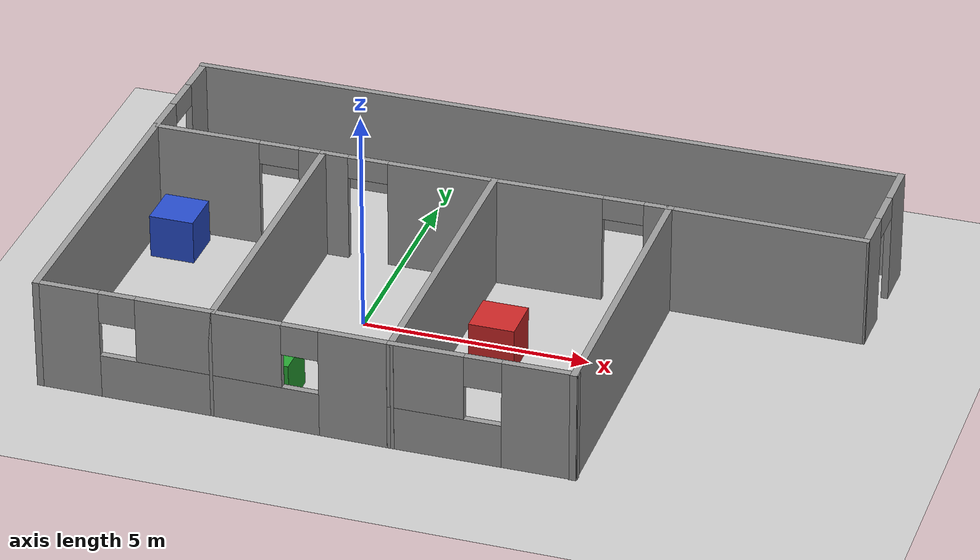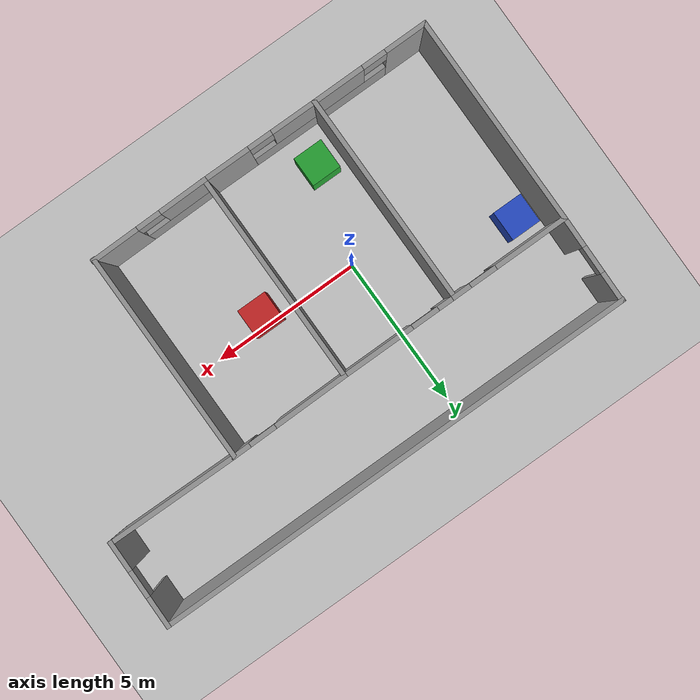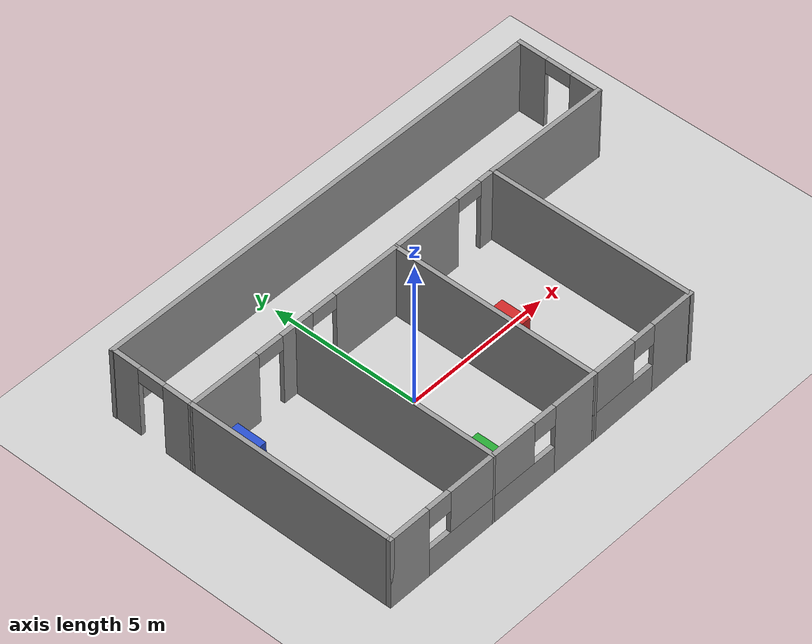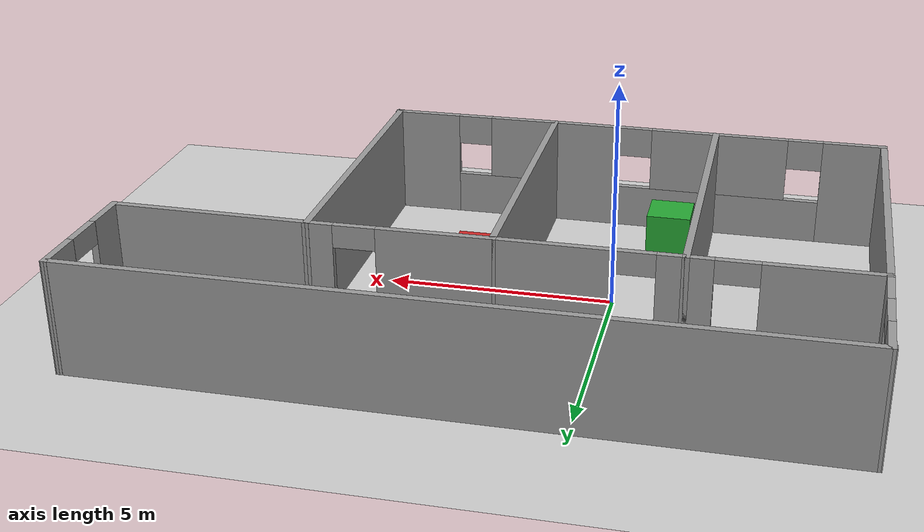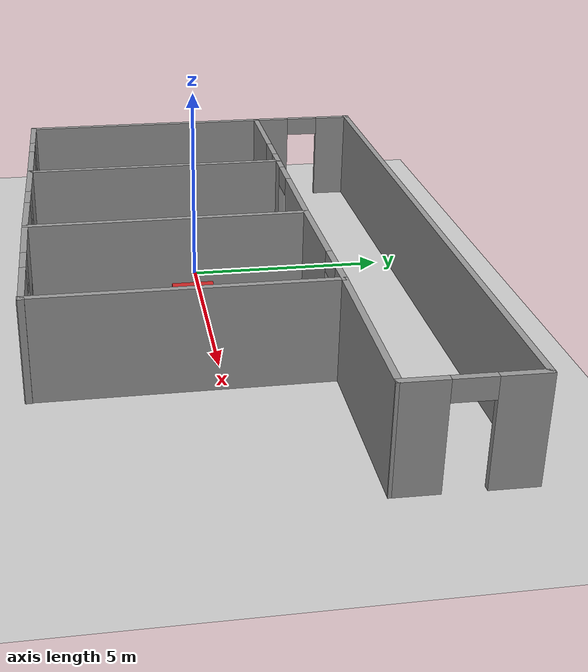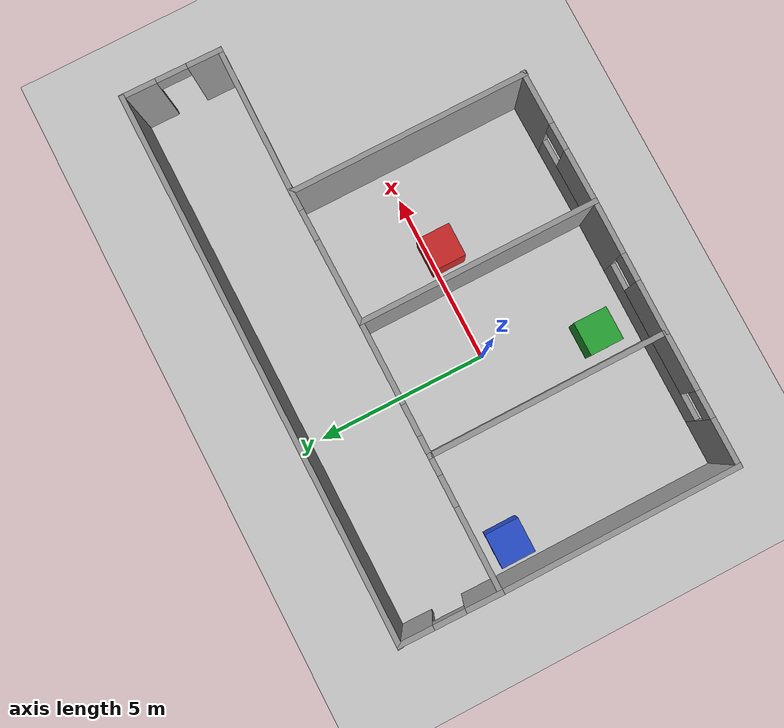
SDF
<sdf version="1.6">
 <world name="default">
  <light name="sun" type="directional">
   <pose>0 0 10 0 -0 0</pose>
   <diffuse>0.8 0.8 0.8 1</diffuse>
   <specular>0.1 0.1 0.1 1</specular>
   <attenuation>
    <range>1000</range>
    <constant>0.9</constant>
    <linear>0.01</linear>
    <quadratic>0.001</quadratic>
   </attenuation>
   <direction>-0.5 0.5 -1</direction>
  </light>
  <model name="ground_plane">
   <static>1</static>
   <link name="link">
    <collision name="collision">
     <geometry><plane><normal>0 0 1</normal><size>100 100</size></plane></geometry>
     <surface><friction><ode><mu>100</mu><mu2>50</mu2></ode></friction></surface>
    </collision>
    <visual name="visual">
     <cast_shadows>0</cast_shadows>
     <geometry><plane><normal>0 0 1</normal><size>100 100</size></plane></geometry>
     <material>
      <script><uri>file://media/materials/scripts/gazebo.material</uri><name>Gazebo/Grey</name></script>
     </material>
    </visual>
   </link>
  </model>
  <gravity>0 0 -9.8</gravity>
  <magnetic_field>6e-06 2.3e-05 -4.2e-05</magnetic_field>
  <atmosphere type="adiabatic"/>
  <physics name="default_physics" default="0" type="ode">
   <max_step_size>0.001</max_step_size>
   <real_time_factor>1</real_time_factor>
   <real_time_update_rate>1000</real_time_update_rate>
  </physics>
  <scene><ambient>0.4 0.4 0.4 1</ambient><background>0.7 0.7 0.7 1</background><shadows>1</shadows></scene>
  <spherical_coordinates>
   <surface_model>EARTH_WGS84</surface_model>
   <latitude_deg>0</latitude_deg>
   <longitude_deg>0</longitude_deg>
   <elevation>0</elevation>
   <heading_deg>0</heading_deg>
  </spherical_coordinates>
  <model name="hallway2">
   <pose>2.33665 0.556149 0 0 -0 0</pose>
   <link name="Wall_0">
    <collision name="Wall_0_Collision">
     <geometry><box><size>6.98 0.15 2.5</size></box></geometry>
     <pose>0 0 1.25 0 -0 0</pose>
    </collision>
    <visual name="Wall_0_Visual">
     <pose>0 0 1.25 0 -0 0</pose>
     <geometry><box><size>6.98 0.15 2.5</size></box></geometry>
     <material>
      <script><uri>file://media/materials/scripts/gazebo.material</uri><name>Gazebo/Grey</name></script>
      <ambient>1 1 1 1</ambient>
     </material>
    </visual>
    <pose>-7.94511 -1.41507 0 0 -0 1.5708</pose>
   </link>
   <link name="Wall_1">
    <pose>-6.02011 1.99993 0 0 -0 0</pose>
    <visual name="Wall_1_Visual_0">
     <pose>-0.763451 0 1.25 0 -0 0</pose>
     <geometry><box><size>2.4731 0.15 2.5</size></box></geometry>
     <material>
      <script><uri>file://media/materials/scripts/gazebo.material</uri><name>Gazebo/Grey</name></script>
      <ambient>1 1 1 1</ambient>
     </material>
    </visual>
    <collision name="Wall_1_Collision_0">
     <geometry><box><size>2.4731 0.15 2.5</size></box></geometry>
     <pose>-0.763451 0 1.25 0 -0 0</pose>
    </collision>
    <visual name="Wall_1_Visual_1">
     <pose>1.68655 0 1.25 0 -0 0</pose>
     <geometry><box><size>0.626901 0.15 2.5</size></box></geometry>
     <material>
      <script><uri>file://media/materials/scripts/gazebo.material</uri><name>Gazebo/Grey</name></script>
      <ambient>1 1 1 1</ambient>
     </material>
    </visual>
    <collision name="Wall_1_Collision_1">
     <geometry><box><size>0.626901 0.15 2.5</size></box></geometry>
     <pose>1.68655 0 1.25 0 -0 0</pose>
    </collision>
    <visual name="Wall_1_Visual_2">
     <pose>0.923099 0 2.25 0 -0 0</pose>
     <geometry><box><size>0.9 0.15 0.5</size></box></geometry>
     <material>
      <script><uri>file://media/materials/scripts/gazebo.material</uri><name>Gazebo/Grey</name></script>
      <ambient>1 1 1 1</ambient>
     </material>
    </visual>
    <collision name="Wall_1_Collision_2">
     <geometry><box><size>0.9 0.15 0.5</size></box></geometry>
     <pose>0.923099 0 2.25 0 -0 0</pose>
    </collision>
   </link>
   <link name="Wall_10">
    <pose>1.7 2.02004 0 0 -0 0.01034</pose>
    <visual name="Wall_10_Visual_0">
     <pose>-0.771894 0 1.25 0 -0 0</pose>
     <geometry><box><size>2.49665 0.15 2.5</size></box></geometry>
     <material>
      <script><uri>file://media/materials/scripts/gazebo.material</uri><name>Gazebo/Grey</name></script>
      <ambient>1 1 1 1</ambient>
     </material>
    </visual>
    <collision name="Wall_10_Collision_0">
     <geometry><box><size>2.49665 0.15 2.5</size></box></geometry>
     <pose>-0.771894 0 1.25 0 -0 0</pose>
    </collision>
    <visual name="Wall_10_Visual_1">
     <pose>1.69832 0 1.25 0 -0 0</pose>
     <geometry><box><size>0.643788 0.15 2.5</size></box></geometry>
     <material>
      <script><uri>file://media/materials/scripts/gazebo.material</uri><name>Gazebo/Grey</name></script>
      <ambient>1 1 1 1</ambient>
     </material>
    </visual>
    <collision name="Wall_10_Collision_1">
     <geometry><box><size>0.643788 0.15 2.5</size></box></geometry>
     <pose>1.69832 0 1.25 0 -0 0</pose>
    </collision>
    <visual name="Wall_10_Visual_2">
     <pose>0.92643 0 2.25 0 -0 0</pose>
     <geometry><box><size>0.9 0.15 0.5</size></box></geometry>
     <material>
      <script><uri>file://media/materials/scripts/gazebo.material</uri><name>Gazebo/Grey</name></script>
      <ambient>1 1 1 1</ambient>
     </material>
    </visual>
    <collision name="Wall_10_Collision_2">
     <geometry><box><size>0.9 0.15 0.5</size></box></geometry>
     <pose>0.92643 0 2.25 0 -0 0</pose>
    </collision>
   </link>
   <link name="Wall_11">
    <collision name="Wall_11_Collision">
     <geometry><box><size>7 0.15 2.5</size></box></geometry>
     <pose>0 0 1.25 0 -0 0</pose>
    </collision>
    <visual name="Wall_11_Visual">
     <pose>0 0 1.25 0 -0 0</pose>
     <geometry><box><size>7 0.15 2.5</size></box></geometry>
     <material>
      <script><uri>file://media/materials/scripts/gazebo.material</uri><name>Gazebo/Grey</name></script>
      <ambient>1 1 1 1</ambient>
     </material>
    </visual>
    <pose>3.625 -1.40495 0 0 0 -1.5708</pose>
   </link>
   <link name="Wall_12">
    <pose>1.7 -4.82995 0 0 0 -3.13125</pose>
    <visual name="Wall_12_Visual_0">
     <pose>-1.21753 0 1.25 0 -0 0</pose>
     <geometry><box><size>1.60538 0.15 2.5</size></box></geometry>
     <material>
      <script><uri>file://media/materials/scripts/gazebo.material</uri><name>Gazebo/Grey</name></script>
      <ambient>1 1 1 1</ambient>
     </material>
    </visual>
    <collision name="Wall_12_Collision_0">
     <geometry><box><size>1.60538 0.15 2.5</size></box></geometry>
     <pose>-1.21753 0 1.25 0 -0 0</pose>
    </collision>
    <visual name="Wall_12_Visual_1">
     <pose>0.802692 0 0.5 0 -0 0</pose>
     <geometry><box><size>2.43505 0.15 1</size></box></geometry>
     <material>
      <script><uri>file://media/materials/scripts/gazebo.material</uri><name>Gazebo/Grey</name></script>
      <ambient>1 1 1 1</ambient>
     </material>
    </visual>
    <collision name="Wall_12_Collision_1">
     <geometry><box><size>2.43505 0.15 1</size></box></geometry>
     <pose>0.802692 0 0.5 0 -0 0</pose>
    </collision>
    <visual name="Wall_12_Visual_2">
     <pose>1.20269 0 1.75 0 -0 0</pose>
     <geometry><box><size>1.63505 0.15 1.5</size></box></geometry>
     <material>
      <script><uri>file://media/materials/scripts/gazebo.material</uri><name>Gazebo/Grey</name></script>
      <ambient>1 1 1 1</ambient>
     </material>
    </visual>
    <collision name="Wall_12_Collision_2">
     <geometry><box><size>1.63505 0.15 1.5</size></box></geometry>
     <pose>1.20269 0 1.75 0 -0 0</pose>
    </collision>
    <visual name="Wall_12_Visual_3">
     <pose>-0.014834 0 2.15 0 -0 0</pose>
     <geometry><box><size>0.8 0.15 0.7</size></box></geometry>
     <material>
      <script><uri>file://media/materials/scripts/gazebo.material</uri><name>Gazebo/Grey</name></script>
      <ambient>1 1 1 1</ambient>
     </material>
    </visual>
    <collision name="Wall_12_Collision_3">
     <geometry><box><size>0.8 0.15 0.7</size></box></geometry>
     <pose>-0.014834 0 2.15 0 -0 0</pose>
    </collision>
   </link>
   <link name="Wall_14">
    <pose>-7.925 3.42493 0 0 -0 1.55668</pose>
    <visual name="Wall_14_Visual_0">
     <pose>-0.969711 0 1.25 0 -0 0</pose>
     <geometry><box><size>1.06058 0.15 2.5</size></box></geometry>
     <material>
      <script><uri>file://media/materials/scripts/gazebo.material</uri><name>Gazebo/Grey</name></script>
      <ambient>1 1 1 1</ambient>
     </material>
    </visual>
    <collision name="Wall_14_Collision_0">
     <geometry><box><size>1.06058 0.15 2.5</size></box></geometry>
     <pose>-0.969711 0 1.25 0 -0 0</pose>
    </collision>
    <visual name="Wall_14_Visual_1">
     <pose>0.980289 0 1.25 0 -0 0</pose>
     <geometry><box><size>1.03942 0.15 2.5</size></box></geometry>
     <material>
      <script><uri>file://media/materials/scripts/gazebo.material</uri><name>Gazebo/Grey</name></script>
      <ambient>1 1 1 1</ambient>
     </material>
    </visual>
    <collision name="Wall_14_Collision_1">
     <geometry><box><size>1.03942 0.15 2.5</size></box></geometry>
     <pose>0.980289 0 1.25 0 -0 0</pose>
    </collision>
    <visual name="Wall_14_Visual_2">
     <pose>0.010579 0 2.25 0 -0 0</pose>
     <geometry><box><size>0.9 0.15 0.5</size></box></geometry>
     <material>
      <script><uri>file://media/materials/scripts/gazebo.material</uri><name>Gazebo/Grey</name></script>
      <ambient>1 1 1 1</ambient>
     </material>
    </visual>
    <collision name="Wall_14_Collision_2">
     <geometry><box><size>0.9 0.15 0.5</size></box></geometry>
     <pose>0.010579 0 2.25 0 -0 0</pose>
    </collision>
   </link>
   <link name="Wall_15">
    <collision name="Wall_15_Collision">
     <geometry><box><size>16 0.15 2.5</size></box></geometry>
     <pose>0 0 1.25 0 -0 0</pose>
    </collision>
    <visual name="Wall_15_Visual">
     <pose>0 0 1.25 0 -0 0</pose>
     <geometry><box><size>16 0.15 2.5</size></box></geometry>
     <material>
      <script><uri>file://media/materials/scripts/gazebo.material</uri><name>Gazebo/Grey</name></script>
      <ambient>1 1 1 1</ambient>
     </material>
    </visual>
    <pose>0 4.84993 0 0 -0 0</pose>
   </link>
   <link name="Wall_16">
    <pose>7.925 3.42493 0 0 0 -1.58491</pose>
    <visual name="Wall_16_Visual_0">
     <pose>-0.970232 0 1.25 0 -0 0</pose>
     <geometry><box><size>1.05954 0.15 2.5</size></box></geometry>
     <material>
      <script><uri>file://media/materials/scripts/gazebo.material</uri><name>Gazebo/Grey</name></script>
      <ambient>1 1 1 1</ambient>
     </material>
    </visual>
    <collision name="Wall_16_Collision_0">
     <geometry><box><size>1.05954 0.15 2.5</size></box></geometry>
     <pose>-0.970232 0 1.25 0 -0 0</pose>
    </collision>
    <visual name="Wall_16_Visual_1">
     <pose>0.979768 0 1.25 0 -0 0</pose>
     <geometry><box><size>1.04046 0.15 2.5</size></box></geometry>
     <material>
      <script><uri>file://media/materials/scripts/gazebo.material</uri><name>Gazebo/Grey</name></script>
      <ambient>1 1 1 1</ambient>
     </material>
    </visual>
    <collision name="Wall_16_Collision_1">
     <geometry><box><size>1.04046 0.15 2.5</size></box></geometry>
     <pose>0.979768 0 1.25 0 -0 0</pose>
    </collision>
    <visual name="Wall_16_Visual_2">
     <pose>0.009537 0 2.25 0 -0 0</pose>
     <geometry><box><size>0.9 0.15 0.5</size></box></geometry>
     <material>
      <script><uri>file://media/materials/scripts/gazebo.material</uri><name>Gazebo/Grey</name></script>
      <ambient>1 1 1 1</ambient>
     </material>
    </visual>
    <collision name="Wall_16_Collision_2">
     <geometry><box><size>0.9 0.15 0.5</size></box></geometry>
     <pose>0.009537 0 2.25 0 -0 0</pose>
    </collision>
   </link>
   <link name="Wall_17">
    <collision name="Wall_17_Collision">
     <geometry><box><size>4.40996 0.15 2.5</size></box></geometry>
     <pose>0 0 1.25 0 -0 0</pose>
    </collision>
    <visual name="Wall_17_Visual">
     <pose>0 0 1.25 0 -0 0</pose>
     <geometry><box><size>4.40996 0.15 2.5</size></box></geometry>
     <material>
      <script><uri>file://media/materials/scripts/gazebo.material</uri><name>Gazebo/Grey</name></script>
      <ambient>1 1 1 1</ambient>
     </material>
    </visual>
    <pose>5.775 2.02004 0 0 -0 3.13215</pose>
   </link>
   <link name="Wall_2">
    <collision name="Wall_2_Collision">
     <geometry><box><size>6.98 0.15 2.5</size></box></geometry>
     <pose>0 0 1.25 0 -0 0</pose>
    </collision>
    <visual name="Wall_2_Visual">
     <pose>0 0 1.25 0 -0 0</pose>
     <geometry><box><size>6.98 0.15 2.5</size></box></geometry>
     <material>
      <script><uri>file://media/materials/scripts/gazebo.material</uri><name>Gazebo/Grey</name></script>
      <ambient>1 1 1 1</ambient>
     </material>
    </visual>
    <pose>-4.09511 -1.41507 0 0 0 -1.5708</pose>
   </link>
   <link name="Wall_4">
    <pose>-6.02011 -4.83007 0 0 -0 0</pose>
    <visual name="Wall_4_Visual_0">
     <pose>-1.27636 0 1.25 0 -0 0</pose>
     <geometry><box><size>1.44728 0.15 2.5</size></box></geometry>
     <material>
      <script><uri>file://media/materials/scripts/gazebo.material</uri><name>Gazebo/Grey</name></script>
      <ambient>1 1 1 1</ambient>
     </material>
    </visual>
    <collision name="Wall_4_Collision_0">
     <geometry><box><size>1.44728 0.15 2.5</size></box></geometry>
     <pose>-1.27636 0 1.25 0 -0 0</pose>
    </collision>
    <visual name="Wall_4_Visual_1">
     <pose>0.723642 0 0.5 0 -0 0</pose>
     <geometry><box><size>2.55272 0.15 1</size></box></geometry>
     <material>
      <script><uri>file://media/materials/scripts/gazebo.material</uri><name>Gazebo/Grey</name></script>
      <ambient>1 1 1 1</ambient>
     </material>
    </visual>
    <collision name="Wall_4_Collision_1">
     <geometry><box><size>2.55272 0.15 1</size></box></geometry>
     <pose>0.723642 0 0.5 0 -0 0</pose>
    </collision>
    <visual name="Wall_4_Visual_2">
     <pose>1.12364 0 1.75 0 -0 0</pose>
     <geometry><box><size>1.75272 0.15 1.5</size></box></geometry>
     <material>
      <script><uri>file://media/materials/scripts/gazebo.material</uri><name>Gazebo/Grey</name></script>
      <ambient>1 1 1 1</ambient>
     </material>
    </visual>
    <collision name="Wall_4_Collision_2">
     <geometry><box><size>1.75272 0.15 1.5</size></box></geometry>
     <pose>1.12364 0 1.75 0 -0 0</pose>
    </collision>
    <visual name="Wall_4_Visual_3">
     <pose>-0.152716 0 2.15 0 -0 0</pose>
     <geometry><box><size>0.8 0.15 0.7</size></box></geometry>
     <material>
      <script><uri>file://media/materials/scripts/gazebo.material</uri><name>Gazebo/Grey</name></script>
      <ambient>1 1 1 1</ambient>
     </material>
    </visual>
    <collision name="Wall_4_Collision_3">
     <geometry><box><size>0.8 0.15 0.7</size></box></geometry>
     <pose>-0.152716 0 2.15 0 -0 0</pose>
    </collision>
   </link>
   <link name="Wall_6">
    <pose>-2.17011 1.99993 0 0 -0 0</pose>
    <visual name="Wall_6_Visual_0">
     <pose>-1.67761 0 1.25 0 -0 0</pose>
     <geometry><box><size>0.644774 0.15 2.5</size></box></geometry>
     <material>
      <script><uri>file://media/materials/scripts/gazebo.material</uri><name>Gazebo/Grey</name></script>
      <ambient>1 1 1 1</ambient>
     </material>
    </visual>
    <collision name="Wall_6_Collision_0">
     <geometry><box><size>0.644774 0.15 2.5</size></box></geometry>
     <pose>-1.67761 0 1.25 0 -0 0</pose>
    </collision>
    <visual name="Wall_6_Visual_1">
     <pose>0.772387 0 1.25 0 -0 0</pose>
     <geometry><box><size>2.45523 0.15 2.5</size></box></geometry>
     <material>
      <script><uri>file://media/materials/scripts/gazebo.material</uri><name>Gazebo/Grey</name></script>
      <ambient>1 1 1 1</ambient>
     </material>
    </visual>
    <collision name="Wall_6_Collision_1">
     <geometry><box><size>2.45523 0.15 2.5</size></box></geometry>
     <pose>0.772387 0 1.25 0 -0 0</pose>
    </collision>
    <visual name="Wall_6_Visual_2">
     <pose>-0.905226 0 2.25 0 -0 0</pose>
     <geometry><box><size>0.9 0.15 0.5</size></box></geometry>
     <material>
      <script><uri>file://media/materials/scripts/gazebo.material</uri><name>Gazebo/Grey</name></script>
      <ambient>1 1 1 1</ambient>
     </material>
    </visual>
    <collision name="Wall_6_Collision_2">
     <geometry><box><size>0.9 0.15 0.5</size></box></geometry>
     <pose>-0.905226 0 2.25 0 -0 0</pose>
    </collision>
   </link>
   <link name="Wall_7">
    <collision name="Wall_7_Collision">
     <geometry><box><size>7 0.15 2.5</size></box></geometry>
     <pose>0 0 1.25 0 -0 0</pose>
    </collision>
    <visual name="Wall_7_Visual">
     <pose>0 0 1.25 0 -0 0</pose>
     <geometry><box><size>7 0.15 2.5</size></box></geometry>
     <material>
      <script><uri>file://media/materials/scripts/gazebo.material</uri><name>Gazebo/Grey</name></script>
      <ambient>1 1 1 1</ambient>
     </material>
    </visual>
    <pose>-0.245114 -1.42507 0 0 0 -1.5708</pose>
   </link>
   <link name="Wall_8">
    <pose>-2.17011 -4.84007 0 0 -0 3.1364</pose>
    <visual name="Wall_8_Visual_0">
     <pose>-1.18989 0 1.25 0 -0 0</pose>
     <geometry><box><size>1.62023 0.15 2.5</size></box></geometry>
     <material>
      <script><uri>file://media/materials/scripts/gazebo.material</uri><name>Gazebo/Grey</name></script>
      <ambient>1 1 1 1</ambient>
     </material>
    </visual>
    <collision name="Wall_8_Collision_0">
     <geometry><box><size>1.62023 0.15 2.5</size></box></geometry>
     <pose>-1.18989 0 1.25 0 -0 0</pose>
    </collision>
    <visual name="Wall_8_Visual_1">
     <pose>0.810115 0 0.5 0 -0 0</pose>
     <geometry><box><size>2.37977 0.15 1</size></box></geometry>
     <material>
      <script><uri>file://media/materials/scripts/gazebo.material</uri><name>Gazebo/Grey</name></script>
      <ambient>1 1 1 1</ambient>
     </material>
    </visual>
    <collision name="Wall_8_Collision_1">
     <geometry><box><size>2.37977 0.15 1</size></box></geometry>
     <pose>0.810115 0 0.5 0 -0 0</pose>
    </collision>
    <visual name="Wall_8_Visual_2">
     <pose>1.21012 0 1.75 0 -0 0</pose>
     <geometry><box><size>1.57977 0.15 1.5</size></box></geometry>
     <material>
      <script><uri>file://media/materials/scripts/gazebo.material</uri><name>Gazebo/Grey</name></script>
      <ambient>1 1 1 1</ambient>
     </material>
    </visual>
    <collision name="Wall_8_Collision_2">
     <geometry><box><size>1.57977 0.15 1.5</size></box></geometry>
     <pose>1.21012 0 1.75 0 -0 0</pose>
    </collision>
    <visual name="Wall_8_Visual_3">
     <pose>0.020229 0 2.15 0 -0 0</pose>
     <geometry><box><size>0.8 0.15 0.7</size></box></geometry>
     <material>
      <script><uri>file://media/materials/scripts/gazebo.material</uri><name>Gazebo/Grey</name></script>
      <ambient>1 1 1 1</ambient>
     </material>
    </visual>
    <collision name="Wall_8_Collision_3">
     <geometry><box><size>0.8 0.15 0.7</size></box></geometry>
     <pose>0.020229 0 2.15 0 -0 0</pose>
    </collision>
   </link>
   <static>1</static>
  </model>
  <model name="unit_box_blue">
   <link name="link">
    <inertial>
     <mass>1</mass>
     <inertia>
      <ixx>0.166667</ixx>
      <ixy>0</ixy>
      <ixz>0</ixz>
      <iyy>0.166667</iyy>
      <iyz>0</iyz>
      <izz>0.166667</izz>
     </inertia>
    </inertial>
    <visual name="visual">
     <geometry><box><size>1 1 1</size></box></geometry>
     <material>
      <script><name>Gazebo/Blue</name><uri>file://media/materials/scripts/gazebo.material</uri></script>
      <ambient>0 0 1 1</ambient>
      <diffuse>0 0 1 1</diffuse>
      <specular>0.01 0.01 0.01 1</specular>
      <emissive>0 0 0 1</emissive>
      <shader type="vertex"><normal_map>__default__</normal_map></shader>
     </material>
    </visual>
    <collision name="collision">
     <geometry><box><size>1 1 1</size></box></geometry>
     <surface>
      <friction>
       <ode><mu>1</mu><mu2>1</mu2><fdir1>0 0 0</fdir1><slip1>0</slip1><slip2>0</slip2></ode>
       <torsional>
        <coefficient>1</coefficient>
        <patch_radius>0</patch_radius>
        <surface_radius>0</surface_radius>
        <use_patch_radius>1</use_patch_radius>
        <ode><slip>0</slip></ode>
       </torsional>
      </friction>
      <bounce><restitution_coefficient>0</restitution_coefficient><threshold>1e+06</threshold></bounce>
      <contact>
       <collide_without_contact>0</collide_without_contact>
       <collide_without_contact_bitmask>1</collide_without_contact_bitmask>
       <collide_bitmask>1</collide_bitmask>
       <ode>
        <soft_cfm>0</soft_cfm>
        <soft_erp>0.2</soft_erp>
        <kp>1e+13</kp>
        <kd>1</kd>
        <max_vel>0.01</max_vel>
        <min_depth>0</min_depth>
       </ode>
       <bullet>
        <split_impulse>1</split_impulse>
        <split_impulse_penetration_threshold>-0.01</split_impulse_penetration_threshold>
        <soft_cfm>0</soft_cfm>
        <soft_erp>0.2</soft_erp>
        <kp>1e+13</kp>
        <kd>1</kd>
       </bullet>
      </contact>
     </surface>
    </collision>
   </link>
   <static>0</static>
   <pose>-4.80921 1.73133 0.5 0 -0 0</pose>
  </model>
  <model name="unit_box_green">
   <link name="link">
    <inertial>
     <mass>1</mass>
     <inertia>
      <ixx>0.166667</ixx>
      <ixy>0</ixy>
      <ixz>0</ixz>
      <iyy>0.166667</iyy>
      <iyz>0</iyz>
      <izz>0.166667</izz>
     </inertia>
    </inertial>
    <visual name="visual">
     <geometry><box><size>1 1 1</size></box></geometry>
     <material>
      <script><name>Gazebo/Green</name><uri>file://media/materials/scripts/gazebo.material</uri></script>
      <ambient>0 1 0 1</ambient>
      <diffuse>0 1 0 1</diffuse>
      <specular>0.01 0.01 0.01 1</specular>
      <emissive>0 0 0 1</emissive>
      <shader type="vertex"><normal_map>__default__</normal_map></shader>
     </material>
    </visual>
    <collision name="collision">
     <geometry><box><size>1 1 1</size></box></geometry>
     <surface>
      <friction>
       <ode><mu>1</mu><mu2>1</mu2><fdir1>0 0 0</fdir1><slip1>0</slip1><slip2>0</slip2></ode>
       <torsional>
        <coefficient>1</coefficient>
        <patch_radius>0</patch_radius>
        <surface_radius>0</surface_radius>
        <use_patch_radius>1</use_patch_radius>
        <ode><slip>0</slip></ode>
       </torsional>
      </friction>
      <bounce><restitution_coefficient>0</restitution_coefficient><threshold>1e+06</threshold></bounce>
      <contact>
       <collide_without_contact>0</collide_without_contact>
       <collide_without_contact_bitmask>1</collide_without_contact_bitmask>
       <collide_bitmask>1</collide_bitmask>
       <ode>
        <soft_cfm>0</soft_cfm>
        <soft_erp>0.2</soft_erp>
        <kp>1e+13</kp>
        <kd>1</kd>
        <max_vel>0.01</max_vel>
        <min_depth>0</min_depth>
       </ode>
       <bullet>
        <split_impulse>1</split_impulse>
        <split_impulse_penetration_threshold>-0.01</split_impulse_penetration_threshold>
        <soft_cfm>0</soft_cfm>
        <soft_erp>0.2</soft_erp>
        <kp>1e+13</kp>
        <kd>1</kd>
       </bullet>
      </contact>
     </surface>
    </collision>
   </link>
   <static>0</static>
   <pose>-0.901273 -3.06437 0.5 0 -0 0</pose>
  </model>
  <model name="unit_box_red">
   <link name="link">
    <inertial>
     <mass>1</mass>
     <inertia>
      <ixx>0.166667</ixx>
      <ixy>0</ixy>
      <ixz>0</ixz>
      <iyy>0.166667</iyy>
      <iyz>0</iyz>
      <izz>0.166667</izz>
     </inertia>
    </inertial>
    <visual name="visual">
     <geometry><box><size>1 1 1</size></box></geometry>
     <material>
      <script><name>Gazebo/Red</name><uri>file://media/materials/scripts/gazebo.material</uri></script>
      <ambient>1 0 0 1</ambient>
      <diffuse>1 0 0 1</diffuse>
      <specular>0.01 0.01 0.01 1</specular>
      <emissive>0 0 0 1</emissive>
      <shader type="vertex"><normal_map>__default__</normal_map></shader>
     </material>
    </visual>
    <collision name="collision">
     <geometry><box><size>1 1 1</size></box></geometry>
     <surface>
      <friction>
       <ode><mu>1</mu><mu2>1</mu2><fdir1>0 0 0</fdir1><slip1>0</slip1><slip2>0</slip2></ode>
       <torsional>
        <coefficient>1</coefficient>
        <patch_radius>0</patch_radius>
        <surface_radius>0</surface_radius>
        <use_patch_radius>1</use_patch_radius>
        <ode><slip>0</slip></ode>
       </torsional>
      </friction>
      <bounce><restitution_coefficient>0</restitution_coefficient><threshold>1e+06</threshold></bounce>
      <contact>
       <collide_without_contact>0</collide_without_contact>
       <collide_without_contact_bitmask>1</collide_without_contact_bitmask>
       <collide_bitmask>1</collide_bitmask>
       <ode>
        <soft_cfm>0</soft_cfm>
        <soft_erp>0.2</soft_erp>
        <kp>1e+13</kp>
        <kd>1</kd>
        <max_vel>0.01</max_vel>
        <min_depth>0</min_depth>
       </ode>
       <bullet>
        <split_impulse>1</split_impulse>
        <split_impulse_penetration_threshold>-0.01</split_impulse_penetration_threshold>
        <soft_cfm>0</soft_cfm>
        <soft_erp>0.2</soft_erp>
        <kp>1e+13</kp>
        <kd>1</kd>
       </bullet>
      </contact>
     </surface>
    </collision>
   </link>
   <static>0</static>
   <pose>3.11784 -0.339626 0.5 0 -0 0</pose>
  </model>
 </world>
</sdf>
